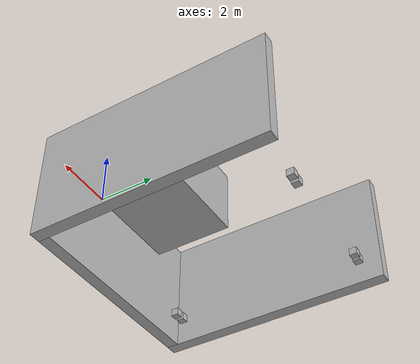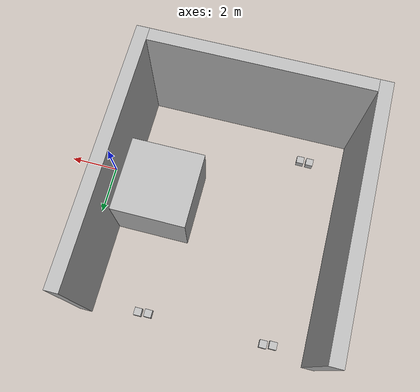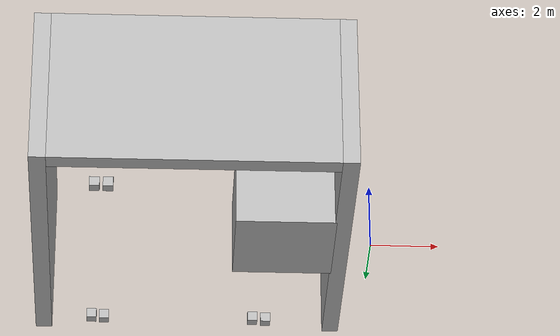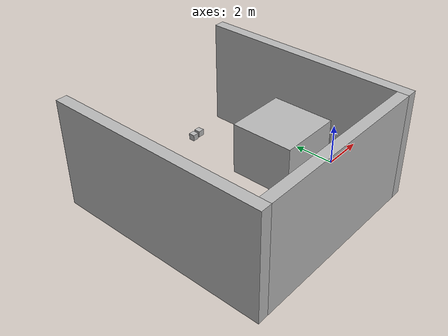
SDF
<?xml version='1.0'?>
<sdf version='1.6'>
  <model name='workspace_2'>
    <link name='link_0'>
      <inertial>
        <mass>1</mass>
        <inertia>
          <ixx>0.166667</ixx>
          <ixy>0</ixy>
          <ixz>0</ixz>
          <iyy>0.166667</iyy>
          <iyz>0</iyz>
          <izz>0.166667</izz>
        </inertia>
        <pose frame=''>0 0 0 0 -0 0</pose>
      </inertial>
      <pose frame=''>-9.80088 1.22687 3 0 -0 0</pose>
      <gravity>1</gravity>
      <self_collide>0</self_collide>
      <kinematic>0</kinematic>
      <enable_wind>0</enable_wind>
      <visual name='visual'>
        <pose frame=''>0 0 0 0 -0 0</pose>
        <geometry>
          <box>
            <size>0.5 10 5</size>
          </box>
        </geometry>
        <material>
          <lighting>1</lighting>
          <shader type='vertex'>
            <normal_map>__default__</normal_map>
          </shader>
        </material>
        <transparency>0</transparency>
        <cast_shadows>1</cast_shadows>
      </visual>
      <collision name='collision'>
        <laser_retro>0</laser_retro>
        <max_contacts>10</max_contacts>
        <pose frame=''>0 0 0 0 -0 0</pose>
        <geometry>
          <box>
            <size>0.5 10 5</size>
          </box>
        </geometry>
        <surface>
          <friction>
            <ode>
              <mu>1</mu>
              <mu2>1</mu2>
              <fdir1>0 0 0</fdir1>
              <slip1>0</slip1>
              <slip2>0</slip2>
            </ode>
            <torsional>
              <coefficient>1</coefficient>
              <patch_radius>0</patch_radius>
              <surface_radius>0</surface_radius>
              <use_patch_radius>1</use_patch_radius>
              <ode>
                <slip>0</slip>
              </ode>
            </torsional>
          </friction>
          <bounce>
            <restitution_coefficient>0</restitution_coefficient>
            <threshold>1e+06</threshold>
          </bounce>
          <contact>
            <collide_without_contact>0</collide_without_contact>
            <collide_without_contact_bitmask>1</collide_without_contact_bitmask>
            <collide_bitmask>1</collide_bitmask>
            <ode>
              <soft_cfm>0</soft_cfm>
              <soft_erp>0.2</soft_erp>
              <kp>1e+13</kp>
              <kd>1</kd>
              <max_vel>0.01</max_vel>
              <min_depth>0</min_depth>
            </ode>
            <bullet>
              <split_impulse>1</split_impulse>
              <split_impulse_penetration_threshold>-0.01</split_impulse_penetration_threshold>
              <soft_cfm>0</soft_cfm>
              <soft_erp>0.2</soft_erp>
              <kp>1e+13</kp>
              <kd>1</kd>
            </bullet>
          </contact>
        </surface>
      </collision>
    </link>
    <link name='link_1'>
      <inertial>
        <mass>1</mass>
        <inertia>
          <ixx>0.166667</ixx>
          <ixy>0</ixy>
          <ixz>0</ixz>
          <iyy>0.166667</iyy>
          <iyz>0</iyz>
          <izz>0.166667</izz>
        </inertia>
        <pose frame=''>0 0 0 0 -0 0</pose>
      </inertial>
      <pose frame=''>-0.800879 1.22687 3 0 -0 0</pose>
      <gravity>1</gravity>
      <self_collide>0</self_collide>
      <kinematic>0</kinematic>
      <enable_wind>0</enable_wind>
      <visual name='visual'>
        <pose frame=''>0 0 0 0 -0 0</pose>
        <geometry>
          <box>
            <size>0.5 10 5</size>
          </box>
        </geometry>
        <material>
          <lighting>1</lighting>
          <shader type='vertex'>
            <normal_map>__default__</normal_map>
          </shader>
        </material>
        <transparency>0</transparency>
        <cast_shadows>1</cast_shadows>
      </visual>
      <collision name='collision'>
        <laser_retro>0</laser_retro>
        <max_contacts>10</max_contacts>
        <pose frame=''>0 0 0 0 -0 0</pose>
        <geometry>
          <box>
            <size>0.5 10 5</size>
          </box>
        </geometry>
        <surface>
          <friction>
            <ode>
              <mu>1</mu>
              <mu2>1</mu2>
              <fdir1>0 0 0</fdir1>
              <slip1>0</slip1>
              <slip2>0</slip2>
            </ode>
            <torsional>
              <coefficient>1</coefficient>
              <patch_radius>0</patch_radius>
              <surface_radius>0</surface_radius>
              <use_patch_radius>1</use_patch_radius>
              <ode>
                <slip>0</slip>
              </ode>
            </torsional>
          </friction>
          <bounce>
            <restitution_coefficient>0</restitution_coefficient>
            <threshold>1e+06</threshold>
          </bounce>
          <contact>
            <collide_without_contact>0</collide_without_contact>
            <collide_without_contact_bitmask>1</collide_without_contact_bitmask>
            <collide_bitmask>1</collide_bitmask>
            <ode>
              <soft_cfm>0</soft_cfm>
              <soft_erp>0.2</soft_erp>
              <kp>1e+13</kp>
              <kd>1</kd>
              <max_vel>0.01</max_vel>
              <min_depth>0</min_depth>
            </ode>
            <bullet>
              <split_impulse>1</split_impulse>
              <split_impulse_penetration_threshold>-0.01</split_impulse_penetration_threshold>
              <soft_cfm>0</soft_cfm>
              <soft_erp>0.2</soft_erp>
              <kp>1e+13</kp>
              <kd>1</kd>
            </bullet>
          </contact>
        </surface>
      </collision>
    </link>
    <link name='link_2'>
      <inertial>
        <mass>1</mass>
        <inertia>
          <ixx>0.166667</ixx>
          <ixy>0</ixy>
          <ixz>0</ixz>
          <iyy>0.166667</iyy>
          <iyz>0</iyz>
          <izz>0.166667</izz>
        </inertia>
        <pose frame=''>0 0 0 0 -0 0</pose>
      </inertial>
      <pose frame=''>-5.30088 -3.52313 3 0 -0 0</pose>
      <gravity>1</gravity>
      <self_collide>0</self_collide>
      <kinematic>0</kinematic>
      <enable_wind>0</enable_wind>
      <visual name='visual'>
        <pose frame=''>0 0 0 0 -0 0</pose>
        <geometry>
          <box>
            <size>8.5 0.5 5</size>
          </box>
        </geometry>
        <material>
          <lighting>1</lighting>
          <shader type='vertex'>
            <normal_map>__default__</normal_map>
          </shader>
        </material>
        <transparency>0</transparency>
        <cast_shadows>1</cast_shadows>
      </visual>
      <collision name='collision'>
        <laser_retro>0</laser_retro>
        <max_contacts>10</max_contacts>
        <pose frame=''>0 0 0 0 -0 0</pose>
        <geometry>
          <box>
            <size>8.5 0.5 5</size>
          </box>
        </geometry>
        <surface>
          <friction>
            <ode>
              <mu>1</mu>
              <mu2>1</mu2>
              <fdir1>0 0 0</fdir1>
              <slip1>0</slip1>
              <slip2>0</slip2>
            </ode>
            <torsional>
              <coefficient>1</coefficient>
              <patch_radius>0</patch_radius>
              <surface_radius>0</surface_radius>
              <use_patch_radius>1</use_patch_radius>
              <ode>
                <slip>0</slip>
              </ode>
            </torsional>
          </friction>
          <bounce>
            <restitution_coefficient>0</restitution_coefficient>
            <threshold>1e+06</threshold>
          </bounce>
          <contact>
            <collide_without_contact>0</collide_without_contact>
            <collide_without_contact_bitmask>1</collide_without_contact_bitmask>
            <collide_bitmask>1</collide_bitmask>
            <ode>
              <soft_cfm>0</soft_cfm>
              <soft_erp>0.2</soft_erp>
              <kp>1e+13</kp>
              <kd>1</kd>
              <max_vel>0.01</max_vel>
              <min_depth>0</min_depth>
            </ode>
            <bullet>
              <split_impulse>1</split_impulse>
              <split_impulse_penetration_threshold>-0.01</split_impulse_penetration_threshold>
              <soft_cfm>0</soft_cfm>
              <soft_erp>0.2</soft_erp>
              <kp>1e+13</kp>
              <kd>1</kd>
            </bullet>
          </contact>
        </surface>
      </collision>
    </link>
    <link name='link_3'>
      <inertial>
        <mass>1</mass>
        <inertia>
          <ixx>0.166667</ixx>
          <ixy>0</ixy>
          <ixz>0</ixz>
          <iyy>0.166667</iyy>
          <iyz>0</iyz>
          <izz>0.166667</izz>
        </inertia>
        <pose frame=''>0 0 0 0 -0 0</pose>
      </inertial>
      <pose frame=''>-2.49999 1.06938 1.75 0 -0 0</pose>
      <gravity>1</gravity>
      <self_collide>0</self_collide>
      <kinematic>0</kinematic>
      <enable_wind>0</enable_wind>
      <visual name='visual'>
        <pose frame=''>0 0 0 0 -0 0</pose>
        <geometry>
          <box>
            <size>3 3 2.5</size>
          </box>
        </geometry>
        <material>
          <lighting>1</lighting>
          <shader type='vertex'>
            <normal_map>__default__</normal_map>
          </shader>
        </material>
        <transparency>0</transparency>
        <cast_shadows>1</cast_shadows>
      </visual>
      <collision name='collision'>
        <laser_retro>0</laser_retro>
        <max_contacts>10</max_contacts>
        <pose frame=''>0 0 0 0 -0 0</pose>
        <geometry>
          <box>
            <size>3 3 2.5</size>
          </box>
        </geometry>
        <surface>
          <friction>
            <ode>
              <mu>1</mu>
              <mu2>1</mu2>
              <fdir1>0 0 0</fdir1>
              <slip1>0</slip1>
              <slip2>0</slip2>
            </ode>
            <torsional>
              <coefficient>1</coefficient>
              <patch_radius>0</patch_radius>
              <surface_radius>0</surface_radius>
              <use_patch_radius>1</use_patch_radius>
              <ode>
                <slip>0</slip>
              </ode>
            </torsional>
          </friction>
          <bounce>
            <restitution_coefficient>0</restitution_coefficient>
            <threshold>1e+06</threshold>
          </bounce>
          <contact>
            <collide_without_contact>0</collide_without_contact>
            <collide_without_contact_bitmask>1</collide_without_contact_bitmask>
            <collide_bitmask>1</collide_bitmask>
            <ode>
              <soft_cfm>0</soft_cfm>
              <soft_erp>0.2</soft_erp>
              <kp>1e+13</kp>
              <kd>1</kd>
              <max_vel>0.01</max_vel>
              <min_depth>0</min_depth>
            </ode>
            <bullet>
              <split_impulse>1</split_impulse>
              <split_impulse_penetration_threshold>-0.01</split_impulse_penetration_threshold>
              <soft_cfm>0</soft_cfm>
              <soft_erp>0.2</soft_erp>
              <kp>1e+13</kp>
              <kd>1</kd>
            </bullet>
          </contact>
        </surface>
      </collision>
    </link>
    <link name='link_4'>
      <inertial>
        <mass>1</mass>
        <inertia>
          <ixx>0.166667</ixx>
          <ixy>0</ixy>
          <ixz>0</ixz>
          <iyy>0.166667</iyy>
          <iyz>0</iyz>
          <izz>0.166667</izz>
        </inertia>
        <pose frame=''>0 0 0 0 -0 0</pose>
      </inertial>
      <pose frame=''>-2.85829 5.78803 0.65 0 -0 0</pose>
      <gravity>1</gravity>
      <self_collide>0</self_collide>
      <kinematic>0</kinematic>
      <enable_wind>0</enable_wind>
      <visual name='visual'>
        <pose frame=''>0 0 0 0 -0 0</pose>
        <geometry>
          <box>
            <size>0.3 0.3 0.3</size>
          </box>
        </geometry>
        <material>
          <lighting>1</lighting>
          <shader type='vertex'>
            <normal_map>__default__</normal_map>
          </shader>
        </material>
        <transparency>0</transparency>
        <cast_shadows>1</cast_shadows>
      </visual>
      <collision name='collision'>
        <laser_retro>0</laser_retro>
        <max_contacts>10</max_contacts>
        <pose frame=''>0 0 0 0 -0 0</pose>
        <geometry>
          <box>
            <size>0.3 0.3 0.3</size>
          </box>
        </geometry>
        <surface>
          <friction>
            <ode>
              <mu>1</mu>
              <mu2>1</mu2>
              <fdir1>0 0 0</fdir1>
              <slip1>0</slip1>
              <slip2>0</slip2>
            </ode>
            <torsional>
              <coefficient>1</coefficient>
              <patch_radius>0</patch_radius>
              <surface_radius>0</surface_radius>
              <use_patch_radius>1</use_patch_radius>
              <ode>
                <slip>0</slip>
              </ode>
            </torsional>
          </friction>
          <bounce>
            <restitution_coefficient>0</restitution_coefficient>
            <threshold>1e+06</threshold>
          </bounce>
          <contact>
            <collide_without_contact>0</collide_without_contact>
            <collide_without_contact_bitmask>1</collide_without_contact_bitmask>
            <collide_bitmask>1</collide_bitmask>
            <ode>
              <soft_cfm>0</soft_cfm>
              <soft_erp>0.2</soft_erp>
              <kp>1e+13</kp>
              <kd>1</kd>
              <max_vel>0.01</max_vel>
              <min_depth>0</min_depth>
            </ode>
            <bullet>
              <split_impulse>1</split_impulse>
              <split_impulse_penetration_threshold>-0.01</split_impulse_penetration_threshold>
              <soft_cfm>0</soft_cfm>
              <soft_erp>0.2</soft_erp>
              <kp>1e+13</kp>
              <kd>1</kd>
            </bullet>
          </contact>
        </surface>
      </collision>
    </link>
    <link name='link_4_clone'>
      <inertial>
        <mass>1</mass>
        <inertia>
          <ixx>0.166667</ixx>
          <ixy>0</ixy>
          <ixz>0</ixz>
          <iyy>0.166667</iyy>
          <iyz>0</iyz>
          <izz>0.166667</izz>
        </inertia>
        <pose frame=''>0 0 0 0 -0 0</pose>
      </inertial>
      <pose frame=''>-7.91661 5.75913 0.65 0 -0 0</pose>
      <gravity>1</gravity>
      <self_collide>0</self_collide>
      <kinematic>0</kinematic>
      <enable_wind>0</enable_wind>
      <visual name='visual'>
        <pose frame=''>0 0 0 0 -0 0</pose>
        <geometry>
          <box>
            <size>0.3 0.3 0.3</size>
          </box>
        </geometry>
        <material>
          <lighting>1</lighting>
          <shader type='vertex'>
            <normal_map>__default__</normal_map>
          </shader>
        </material>
        <transparency>0</transparency>
        <cast_shadows>1</cast_shadows>
      </visual>
      <collision name='collision'>
        <laser_retro>0</laser_retro>
        <max_contacts>10</max_contacts>
        <pose frame=''>0 0 0 0 -0 0</pose>
        <geometry>
          <box>
            <size>0.3 0.3 0.3</size>
          </box>
        </geometry>
        <surface>
          <friction>
            <ode>
              <mu>1</mu>
              <mu2>1</mu2>
              <fdir1>0 0 0</fdir1>
              <slip1>0</slip1>
              <slip2>0</slip2>
            </ode>
            <torsional>
              <coefficient>1</coefficient>
              <patch_radius>0</patch_radius>
              <surface_radius>0</surface_radius>
              <use_patch_radius>1</use_patch_radius>
              <ode>
                <slip>0</slip>
              </ode>
            </torsional>
          </friction>
          <bounce>
            <restitution_coefficient>0</restitution_coefficient>
            <threshold>1e+06</threshold>
          </bounce>
          <contact>
            <collide_without_contact>0</collide_without_contact>
            <collide_without_contact_bitmask>1</collide_without_contact_bitmask>
            <collide_bitmask>1</collide_bitmask>
            <ode>
              <soft_cfm>0</soft_cfm>
              <soft_erp>0.2</soft_erp>
              <kp>1e+13</kp>
              <kd>1</kd>
              <max_vel>0.01</max_vel>
              <min_depth>0</min_depth>
            </ode>
            <bullet>
              <split_impulse>1</split_impulse>
              <split_impulse_penetration_threshold>-0.01</split_impulse_penetration_threshold>
              <soft_cfm>0</soft_cfm>
              <soft_erp>0.2</soft_erp>
              <kp>1e+13</kp>
              <kd>1</kd>
            </bullet>
          </contact>
        </surface>
      </collision>
    </link>
    <link name='link_4_clone_0'>
      <inertial>
        <mass>1</mass>
        <inertia>
          <ixx>0.166667</ixx>
          <ixy>0</ixy>
          <ixz>0</ixz>
          <iyy>0.166667</iyy>
          <iyz>0</iyz>
          <izz>0.166667</izz>
        </inertia>
        <pose frame=''>0 0 0 0 -0 0</pose>
      </inertial>
      <pose frame=''>-3.26528 5.75208 0.65 0 -0 0</pose>
      <gravity>1</gravity>
      <self_collide>0</self_collide>
      <kinematic>0</kinematic>
      <enable_wind>0</enable_wind>
      <visual name='visual'>
        <pose frame=''>0 0 0 0 -0 0</pose>
        <geometry>
          <box>
            <size>0.3 0.3 0.3</size>
          </box>
        </geometry>
        <material>
          <lighting>1</lighting>
          <shader type='vertex'>
            <normal_map>__default__</normal_map>
          </shader>
        </material>
        <transparency>0</transparency>
        <cast_shadows>1</cast_shadows>
      </visual>
      <collision name='collision'>
        <laser_retro>0</laser_retro>
        <max_contacts>10</max_contacts>
        <pose frame=''>0 0 0 0 -0 0</pose>
        <geometry>
          <box>
            <size>0.3 0.3 0.3</size>
          </box>
        </geometry>
        <surface>
          <friction>
            <ode>
              <mu>1</mu>
              <mu2>1</mu2>
              <fdir1>0 0 0</fdir1>
              <slip1>0</slip1>
              <slip2>0</slip2>
            </ode>
            <torsional>
              <coefficient>1</coefficient>
              <patch_radius>0</patch_radius>
              <surface_radius>0</surface_radius>
              <use_patch_radius>1</use_patch_radius>
              <ode>
                <slip>0</slip>
              </ode>
            </torsional>
          </friction>
          <bounce>
            <restitution_coefficient>0</restitution_coefficient>
            <threshold>1e+06</threshold>
          </bounce>
          <contact>
            <collide_without_contact>0</collide_without_contact>
            <collide_without_contact_bitmask>1</collide_without_contact_bitmask>
            <collide_bitmask>1</collide_bitmask>
            <ode>
              <soft_cfm>0</soft_cfm>
              <soft_erp>0.2</soft_erp>
              <kp>1e+13</kp>
              <kd>1</kd>
              <max_vel>0.01</max_vel>
              <min_depth>0</min_depth>
            </ode>
            <bullet>
              <split_impulse>1</split_impulse>
              <split_impulse_penetration_threshold>-0.01</split_impulse_penetration_threshold>
              <soft_cfm>0</soft_cfm>
              <soft_erp>0.2</soft_erp>
              <kp>1e+13</kp>
              <kd>1</kd>
            </bullet>
          </contact>
        </surface>
      </collision>
    </link>
    <link name='link_4_clone_1'>
      <inertial>
        <mass>1</mass>
        <inertia>
          <ixx>0.166667</ixx>
          <ixy>0</ixy>
          <ixz>0</ixz>
          <iyy>0.166667</iyy>
          <iyz>0</iyz>
          <izz>0.166667</izz>
        </inertia>
        <pose frame=''>0 0 0 0 -0 0</pose>
      </inertial>
      <pose frame=''>-8.30513 5.71517 0.65 0 -0 0</pose>
      <gravity>1</gravity>
      <self_collide>0</self_collide>
      <kinematic>0</kinematic>
      <enable_wind>0</enable_wind>
      <visual name='visual'>
        <pose frame=''>0 0 0 0 -0 0</pose>
        <geometry>
          <box>
            <size>0.3 0.3 0.3</size>
          </box>
        </geometry>
        <material>
          <lighting>1</lighting>
          <shader type='vertex'>
            <normal_map>__default__</normal_map>
          </shader>
        </material>
        <transparency>0</transparency>
        <cast_shadows>1</cast_shadows>
      </visual>
      <collision name='collision'>
        <laser_retro>0</laser_retro>
        <max_contacts>10</max_contacts>
        <pose frame=''>0 0 0 0 -0 0</pose>
        <geometry>
          <box>
            <size>0.3 0.3 0.3</size>
          </box>
        </geometry>
        <surface>
          <friction>
            <ode>
              <mu>1</mu>
              <mu2>1</mu2>
              <fdir1>0 0 0</fdir1>
              <slip1>0</slip1>
              <slip2>0</slip2>
            </ode>
            <torsional>
              <coefficient>1</coefficient>
              <patch_radius>0</patch_radius>
              <surface_radius>0</surface_radius>
              <use_patch_radius>1</use_patch_radius>
              <ode>
                <slip>0</slip>
              </ode>
            </torsional>
          </friction>
          <bounce>
            <restitution_coefficient>0</restitution_coefficient>
            <threshold>1e+06</threshold>
          </bounce>
          <contact>
            <collide_without_contact>0</collide_without_contact>
            <collide_without_contact_bitmask>1</collide_without_contact_bitmask>
            <collide_bitmask>1</collide_bitmask>
            <ode>
              <soft_cfm>0</soft_cfm>
              <soft_erp>0.2</soft_erp>
              <kp>1e+13</kp>
              <kd>1</kd>
              <max_vel>0.01</max_vel>
              <min_depth>0</min_depth>
            </ode>
            <bullet>
              <split_impulse>1</split_impulse>
              <split_impulse_penetration_threshold>-0.01</split_impulse_penetration_threshold>
              <soft_cfm>0</soft_cfm>
              <soft_erp>0.2</soft_erp>
              <kp>1e+13</kp>
              <kd>1</kd>
            </bullet>
          </contact>
        </surface>
      </collision>
    </link>
    <link name='link_4_clone_2'>
      <inertial>
        <mass>1</mass>
        <inertia>
          <ixx>0.166667</ixx>
          <ixy>0</ixy>
          <ixz>0</ixz>
          <iyy>0.166667</iyy>
          <iyz>0</iyz>
          <izz>0.166667</izz>
        </inertia>
        <pose frame=''>0 0 0 0 -0 0</pose>
      </inertial>
      <pose frame=''>-7.77096 -2.14412 0.65 0 -0 0</pose>
      <gravity>1</gravity>
      <self_collide>0</self_collide>
      <kinematic>0</kinematic>
      <enable_wind>0</enable_wind>
      <visual name='visual'>
        <pose frame=''>0 0 0 0 -0 0</pose>
        <geometry>
          <box>
            <size>0.3 0.3 0.3</size>
          </box>
        </geometry>
        <material>
          <lighting>1</lighting>
          <shader type='vertex'>
            <normal_map>__default__</normal_map>
          </shader>
        </material>
        <transparency>0</transparency>
        <cast_shadows>1</cast_shadows>
      </visual>
      <collision name='collision'>
        <laser_retro>0</laser_retro>
        <max_contacts>10</max_contacts>
        <pose frame=''>0 0 0 0 -0 0</pose>
        <geometry>
          <box>
            <size>0.3 0.3 0.3</size>
          </box>
        </geometry>
        <surface>
          <friction>
            <ode>
              <mu>1</mu>
              <mu2>1</mu2>
              <fdir1>0 0 0</fdir1>
              <slip1>0</slip1>
              <slip2>0</slip2>
            </ode>
            <torsional>
              <coefficient>1</coefficient>
              <patch_radius>0</patch_radius>
              <surface_radius>0</surface_radius>
              <use_patch_radius>1</use_patch_radius>
              <ode>
                <slip>0</slip>
              </ode>
            </torsional>
          </friction>
          <bounce>
            <restitution_coefficient>0</restitution_coefficient>
            <threshold>1e+06</threshold>
          </bounce>
          <contact>
            <collide_without_contact>0</collide_without_contact>
            <collide_without_contact_bitmask>1</collide_without_contact_bitmask>
            <collide_bitmask>1</collide_bitmask>
            <ode>
              <soft_cfm>0</soft_cfm>
              <soft_erp>0.2</soft_erp>
              <kp>1e+13</kp>
              <kd>1</kd>
              <max_vel>0.01</max_vel>
              <min_depth>0</min_depth>
            </ode>
            <bullet>
              <split_impulse>1</split_impulse>
              <split_impulse_penetration_threshold>-0.01</split_impulse_penetration_threshold>
              <soft_cfm>0</soft_cfm>
              <soft_erp>0.2</soft_erp>
              <kp>1e+13</kp>
              <kd>1</kd>
            </bullet>
          </contact>
        </surface>
      </collision>
    </link>
    <link name='link_4_clone_3'>
      <inertial>
        <mass>1</mass>
        <inertia>
          <ixx>0.166667</ixx>
          <ixy>0</ixy>
          <ixz>0</ixz>
          <iyy>0.166667</iyy>
          <iyz>0</iyz>
          <izz>0.166667</izz>
        </inertia>
        <pose frame=''>0 0 0 0 -0 0</pose>
      </inertial>
      <pose frame=''>-8.17148 -2.14119 0.65 0 -0 0</pose>
      <gravity>1</gravity>
      <self_collide>0</self_collide>
      <kinematic>0</kinematic>
      <enable_wind>0</enable_wind>
      <visual name='visual'>
        <pose frame=''>0 0 0 0 -0 0</pose>
        <geometry>
          <box>
            <size>0.3 0.3 0.3</size>
          </box>
        </geometry>
        <material>
          <lighting>1</lighting>
          <shader type='vertex'>
            <normal_map>__default__</normal_map>
          </shader>
        </material>
        <transparency>0</transparency>
        <cast_shadows>1</cast_shadows>
      </visual>
      <collision name='collision'>
        <laser_retro>0</laser_retro>
        <max_contacts>10</max_contacts>
        <pose frame=''>0 0 0 0 -0 0</pose>
        <geometry>
          <box>
            <size>0.3 0.3 0.3</size>
          </box>
        </geometry>
        <surface>
          <friction>
            <ode>
              <mu>1</mu>
              <mu2>1</mu2>
              <fdir1>0 0 0</fdir1>
              <slip1>0</slip1>
              <slip2>0</slip2>
            </ode>
            <torsional>
              <coefficient>1</coefficient>
              <patch_radius>0</patch_radius>
              <surface_radius>0</surface_radius>
              <use_patch_radius>1</use_patch_radius>
              <ode>
                <slip>0</slip>
              </ode>
            </torsional>
          </friction>
          <bounce>
            <restitution_coefficient>0</restitution_coefficient>
            <threshold>1e+06</threshold>
          </bounce>
          <contact>
            <collide_without_contact>0</collide_without_contact>
            <collide_without_contact_bitmask>1</collide_without_contact_bitmask>
            <collide_bitmask>1</collide_bitmask>
            <ode>
              <soft_cfm>0</soft_cfm>
              <soft_erp>0.2</soft_erp>
              <kp>1e+13</kp>
              <kd>1</kd>
              <max_vel>0.01</max_vel>
              <min_depth>0</min_depth>
            </ode>
            <bullet>
              <split_impulse>1</split_impulse>
              <split_impulse_penetration_threshold>-0.01</split_impulse_penetration_threshold>
              <soft_cfm>0</soft_cfm>
              <soft_erp>0.2</soft_erp>
              <kp>1e+13</kp>
              <kd>1</kd>
            </bullet>
          </contact>
        </surface>
      </collision>
    </link>
    <joint name='link_1_JOINT_2' type='fixed'>
      <parent>link_1</parent>
      <child>link_3</child>
      <pose frame=''>0 0 0 0 -0 0</pose>
      <physics>
        <ode>
          <limit>
            <cfm>0</cfm>
            <erp>0.2</erp>
          </limit>
          <suspension>
            <cfm>0</cfm>
            <erp>0.2</erp>
          </suspension>
        </ode>
      </physics>
    </joint>
    <joint name='link_2_JOINT_0' type='fixed'>
      <parent>link_2</parent>
      <child>link_1</child>
      <pose frame=''>0 0 0 0 -0 0</pose>
      <physics>
        <ode>
          <limit>
            <cfm>0</cfm>
            <erp>0.2</erp>
          </limit>
          <suspension>
            <cfm>0</cfm>
            <erp>0.2</erp>
          </suspension>
        </ode>
      </physics>
    </joint>
    <joint name='link_2_JOINT_1' type='fixed'>
      <parent>link_2</parent>
      <child>link_0</child>
      <pose frame=''>0 0 0 0 -0 0</pose>
      <physics>
        <ode>
          <limit>
            <cfm>0</cfm>
            <erp>0.2</erp>
          </limit>
          <suspension>
            <cfm>0</cfm>
            <erp>0.2</erp>
          </suspension>
        </ode>
      </physics>
    </joint>
    <static>0</static>
    <allow_auto_disable>1</allow_auto_disable>
  </model>
</sdf>
